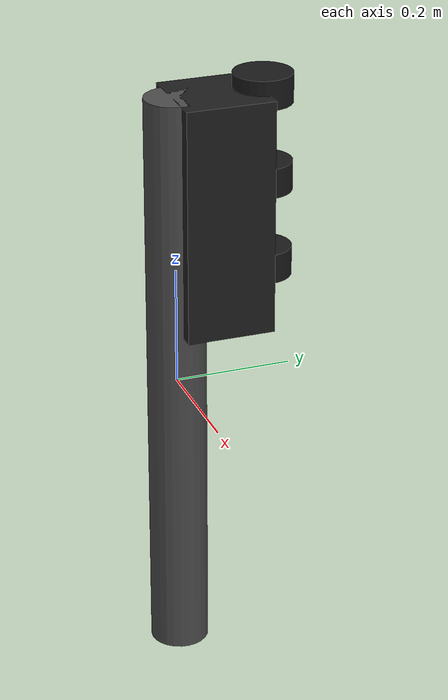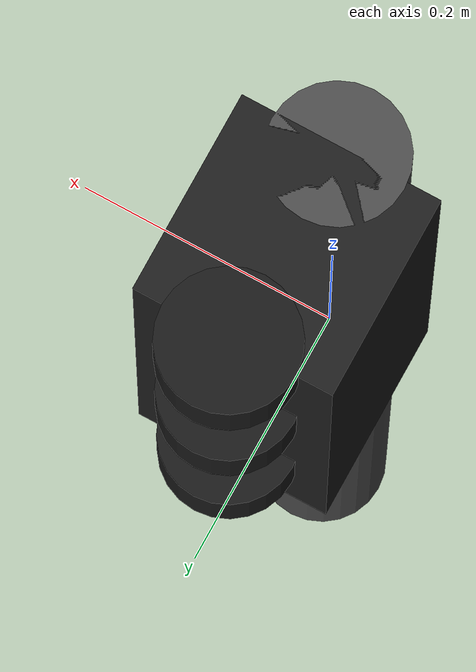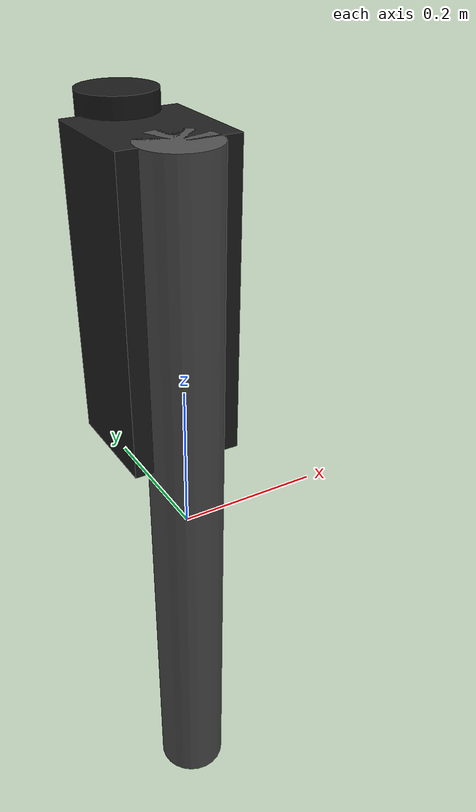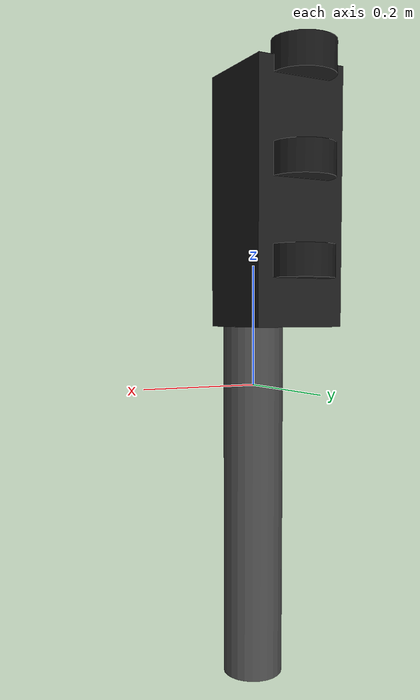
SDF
<?xml version="1.0" ?>
<sdf version="1.6">
  <model name="traffic_light">
    <static>true</static>

    <link name="pole">
      <pose>0 0 0 0 0 0</pose>
      <collision name="collision">
        <geometry>
          <cylinder>
            <radius>0.05</radius>
            <length>1.0</length>
          </cylinder>
        </geometry>
      </collision>
      <visual name="visual">
        <geometry>
          <cylinder>
            <radius>0.05</radius>
            <length>1.0</length>
          </cylinder>
        </geometry>
        <material>
          <script>
            <uri>file://media/materials/scripts/gazebo.material</uri>
            <name>Gazebo/DarkGrey</name>
          </script>
        </material>
      </visual>
    </link>

    <link name="housing">
      <pose>0 0.07 0.3 0 0 0</pose>
      <collision name="collision">
        <geometry>
          <box>
            <size>0.15 0.15 0.4</size>
          </box>
        </geometry>
      </collision>
      <visual name="visual">
        <geometry>
          <box>
            <size>0.15 0.15 0.4</size>
          </box>
        </geometry>
        <material>
          <script>
            <uri>file://media/materials/scripts/gazebo.material</uri>
            <name>Gazebo/Black</name>
          </script>
        </material>
      </visual>
    </link>

    <link name="red_light">
      <pose>0 0.15 0.5 0 0 0</pose>
      <collision name="collision">
        <geometry>
          <cylinder>
            <radius>0.05</radius>
            <length>0.05</length>
          </cylinder>
        </geometry>
      </collision>
      <visual name="visual">
        <geometry>
          <cylinder>
            <radius>0.05</radius>
            <length>0.05</length>
          </cylinder>
        </geometry>
        <material>
          <ambient>0.1 0.1 0.1 1</ambient>
          <diffuse>0.1 0.1 0.1 1</diffuse>
          <specular>0.1 0.1 0.1 1</specular>
          <emissive>0 0 0 1</emissive>
        </material>
      </visual>
    </link>

    <link name="yellow_light">
      <pose>0 0.15 0.35 0 0 0</pose>
      <collision name="collision">
        <geometry>
          <cylinder>
            <radius>0.05</radius>
            <length>0.05</length>
          </cylinder>
        </geometry>
      </collision>
      <visual name="visual">
        <geometry>
          <cylinder>
            <radius>0.05</radius>
            <length>0.05</length>
          </cylinder>
        </geometry>
        <material>
          <ambient>0.1 0.1 0.1 1</ambient>
          <diffuse>0.1 0.1 0.1 1</diffuse>
          <specular>0.1 0.1 0.1 1</specular>
          <emissive>0 0 0 1</emissive>
        </material>
      </visual>
    </link>

    <link name="green_light">
      <pose>0 0.15 0.2 0 0 0</pose>
      <collision name="collision">
        <geometry>
          <cylinder>
            <radius>0.05</radius>
            <length>0.05</length>
          </cylinder>
        </geometry>
      </collision>
      <visual name="visual">
        <geometry>
          <cylinder>
            <radius>0.05</radius>
            <length>0.05</length>
          </cylinder>
        </geometry>
        <material>
          <ambient>0.1 0.1 0.1 1</ambient>
          <diffuse>0.1 0.1 0.1 1</diffuse>
          <specular>0.1 0.1 0.1 1</specular>
          <emissive>0 0 0 1</emissive>
        </material>
      </visual>
    </link>

    <joint name="pole_to_housing" type="fixed">
      <parent>pole</parent>
      <child>housing</child>
    </joint>

    <joint name="red_joint" type="fixed">
      <parent>housing</parent>
      <child>red_light</child>
    </joint>

    <joint name="yellow_joint" type="fixed">
      <parent>housing</parent>
      <child>yellow_light</child>
    </joint>

    <joint name="green_joint" type="fixed">
      <parent>housing</parent>
      <child>green_light</child>
    </joint>

    <plugin name="led_plugin" filename="libLedPlugin.so">
      <led>
        <visual>red_light::visual</visual>
        <pattern>
          <duration>5.0</duration>
          <color>1.0 0.0 0.0</color>
        </pattern>
        <pattern>
          <duration>14.0</duration>
          <color>0.1 0.1 0.1</color>
        </pattern>
      </led>
      <led>
        <visual>yellow_light::visual</visual>
        <pattern>
          <duration>5.0</duration>
          <color>0.1 0.1 0.1</color>
        </pattern>
        <pattern>
          <duration>4.0</duration>
          <color>1.0 1.0 0.0</color>
        </pattern>
        <pattern>
          <duration>10.0</duration>
          <color>0.1 0.1 0.1</color>
        </pattern>
      </led>
      <led>
        <visual>green_light::visual</visual>
        <pattern>
          <duration>9.0</duration>
          <color>0.1 0.1 0.1</color>
        </pattern>
        <pattern>
          <duration>10.0</duration>
          <color>0.0 1.0 0.0</color>
        </pattern>
      </led>
    </plugin>
  </model>
</sdf>
